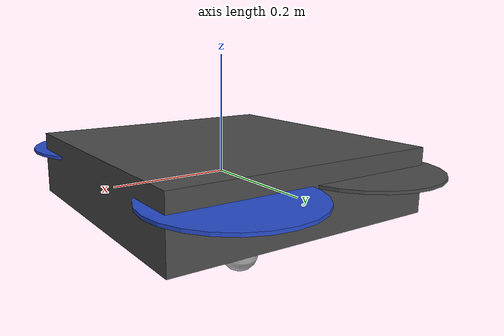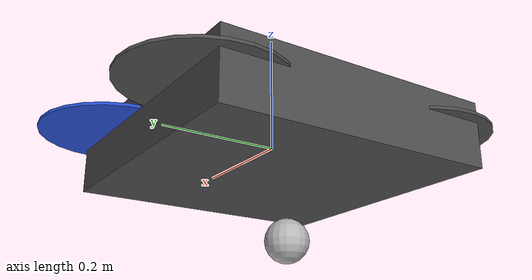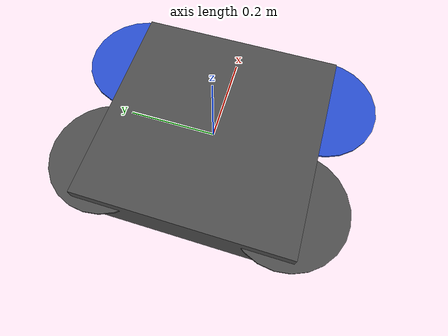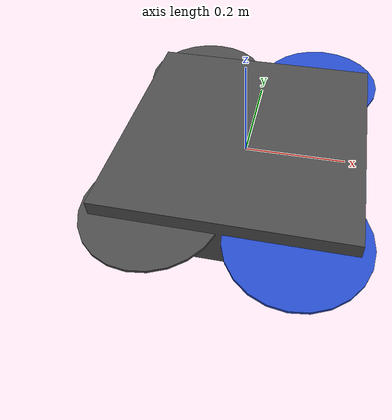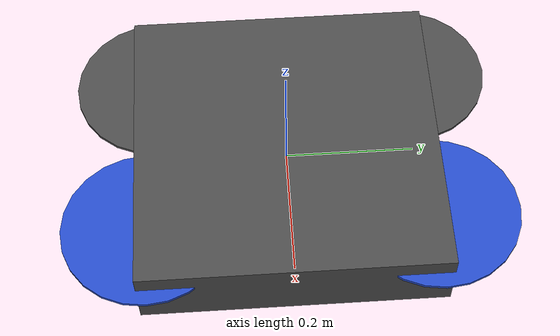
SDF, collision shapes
<sdf version='1.6'>
  <model name='irisfpv'>
    <link name='base_link'>
      <pose frame=''>0.0 0.0 0 0 -0 0.0</pose>   <!-- x,y,z  roll,pitch,yaw -->
      <inertial>
        <pose frame=''>0 0 0 0 -0 0</pose>
        <mass>1.5</mass>
        <inertia>
          <ixx>0.029125</ixx>
          <ixy>0</ixy>
          <ixz>0</ixz>
          <iyy>0.029125</iyy>
          <iyz>0</iyz>
          <izz>0.055225</izz>
        </inertia>
      </inertial>
      <collision name='base_link_inertia_collision'>
        <pose frame=''>0 0 0 0 -0 0.0</pose>
        <geometry>
          <box>
            <size>0.47 0.47 0.11</size>
          </box>
        </geometry>
        <surface>
          <contact>
            <ode>
              <min_depth>0.001</min_depth>
              <max_vel>0</max_vel>
            </ode>
          </contact>
          <friction>
            <ode/>
          </friction>
        </surface>
      </collision>
      <visual name='base_link_inertia_visual'>
        <pose frame=''>0 0 0 0 -0 0.0</pose>
        <geometry>
          <mesh>
            <scale>1 1 1</scale>
            <uri>model://iris_test/meshes/iris.stl</uri>
          </mesh>
        </geometry>
        <material>
          <script>
            <name>Gazebo/DarkGrey</name>
            <uri>file://media/materials/scripts/gazebo.material</uri>
          </script>
        </material>
      </visual>
      <gravity>1</gravity>
      <velocity_decay/>
    </link>
    <link name='/imu_link'>
      <pose frame=''>0 0 0 0 -0 0.0</pose>
      <inertial>
        <pose frame=''>0 0 0 0 -0 0</pose>
        <mass>0.015</mass>
        <inertia>
          <ixx>1e-05</ixx>
          <ixy>0</ixy>
          <ixz>0</ixz>
          <iyy>1e-05</iyy>
          <iyz>0</iyz>
          <izz>1e-05</izz>
        </inertia>
      </inertial>
    </link>
    <joint name='/imu_joint' type='revolute'>
      <child>/imu_link</child>
      <parent>base_link</parent>
      <axis>
        <xyz>1 0 0</xyz>
        <limit>
          <lower>0</lower>
          <upper>0</upper>
          <effort>0</effort>
          <velocity>0</velocity>
        </limit>
        <dynamics>
          <spring_reference>0</spring_reference>
          <spring_stiffness>0</spring_stiffness>
        </dynamics>
        <use_parent_model_frame>1</use_parent_model_frame>
      </axis>
    </joint>
    <link name='rotor_0'>
      <pose frame=''>0.13 -0.22 0.023 0 -0 0</pose>
      <inertial>
        <pose frame=''>0 0 0 0 -0 0</pose>
        <mass>0.005</mass>
        <inertia>
          <ixx>9.75e-07</ixx>
          <ixy>0</ixy>
          <ixz>0</ixz>
          <iyy>0.000273104</iyy>
          <iyz>0</iyz>
          <izz>0.000274004</izz>
        </inertia>
      </inertial>
      <collision name='rotor_0_collision'>
        <pose frame=''>0 0 0 0 -0 0</pose>
        <geometry>
          <cylinder>
            <length>0.005</length>
            <radius>0.128</radius>
          </cylinder>
        </geometry>
        <surface>
          <contact>
            <ode/>
          </contact>
          <friction>
            <ode/>
          </friction>
        </surface>
      </collision>
      <visual name='rotor_0_visual'>
        <pose frame=''>0 0 0 0 -0 0</pose>
        <geometry>
          <mesh>
            <scale>1 1 1</scale>
            <uri>model://iris_test/meshes/iris_prop_ccw.dae</uri>
          </mesh>
        </geometry>
        <material>
          <script>
            <name>Gazebo/Blue</name>
            <uri>file://media/materials/scripts/gazebo.material</uri>
          </script>
        </material>
      </visual>
      <gravity>1</gravity>
      <velocity_decay/>
    </link>
    <joint name='rotor_0_joint' type='revolute'>
      <child>rotor_0</child>
      <parent>base_link</parent>
      <axis>
        <xyz>0 0 1</xyz>
        <limit>
          <lower>-1e+16</lower>
          <upper>1e+16</upper>
        </limit>
        <dynamics>
          <spring_reference>0</spring_reference>
          <spring_stiffness>0</spring_stiffness>
        </dynamics>
        <use_parent_model_frame>1</use_parent_model_frame>
      </axis>
    </joint>
    <link name='rotor_1'>
      <pose frame=''>0.13 0.22 0.023 0 -0 0</pose>
      <inertial>
        <pose frame=''>0 0 0 0 -0 0</pose>
        <mass>0.005</mass>
        <inertia>
          <ixx>9.75e-07</ixx>
          <ixy>0</ixy>
          <ixz>0</ixz>
          <iyy>0.000273104</iyy>
          <iyz>0</iyz>
          <izz>0.000274004</izz>
        </inertia>
      </inertial>
      <collision name='rotor_1_collision'>
        <pose frame=''>0 0 0 0 -0 0</pose>
        <geometry>
          <cylinder>
            <length>0.005</length>
            <radius>0.128</radius>
          </cylinder>
        </geometry>
        <surface>
          <contact>
            <ode/>
          </contact>
          <friction>
            <ode/>
          </friction>
        </surface>
      </collision>
      <visual name='rotor_1_visual'>
        <pose frame=''>0 0 0 0 -0 0</pose>
        <geometry>
          <mesh>
            <scale>1 1 1</scale>
            <uri>model://iris_test/meshes/iris_prop_cw.dae</uri>
          </mesh>
        </geometry>
        <material>
          <script>
            <name>Gazebo/Blue</name>
            <uri>file://media/materials/scripts/gazebo.material</uri>
          </script>
        </material>
      </visual>
      <gravity>1</gravity>
      <velocity_decay/>
    </link>
    <joint name='rotor_1_joint' type='revolute'>
      <child>rotor_1</child>
      <parent>base_link</parent>
      <axis>
        <xyz>0 0 1</xyz>
        <limit>
          <lower>-1e+16</lower>
          <upper>1e+16</upper>
        </limit>
        <dynamics>
          <spring_reference>0</spring_reference>
          <spring_stiffness>0</spring_stiffness>
        </dynamics>
        <use_parent_model_frame>1</use_parent_model_frame>
      </axis>
    </joint>
    <link name='rotor_2'>
      <pose frame=''>-0.13 0.2 0.023 0 -0 0</pose>
      <inertial>
        <pose frame=''>0 0 0 0 -0 0</pose>
        <mass>0.005</mass>
        <inertia>
          <ixx>9.75e-07</ixx>
          <ixy>0</ixy>
          <ixz>0</ixz>
          <iyy>0.000273104</iyy>
          <iyz>0</iyz>
          <izz>0.000274004</izz>
        </inertia>
      </inertial>
      <collision name='rotor_2_collision'>
        <pose frame=''>0 0 0 0 -0 0</pose>
        <geometry>
          <cylinder>
            <length>0.005</length>
            <radius>0.128</radius>
          </cylinder>
        </geometry>
        <surface>
          <contact>
            <ode/>
          </contact>
          <friction>
            <ode/>
          </friction>
        </surface>
      </collision>
      <visual name='rotor_2_visual'>
        <pose frame=''>0 0 0 0 -0 0</pose>
        <geometry>
          <mesh>
            <scale>1 1 1</scale>
            <uri>model://iris_test/meshes/iris_prop_ccw.dae</uri>
          </mesh>
        </geometry>
        <material>
          <script>
            <name>Gazebo/DarkGrey</name>
            <uri>file://media/materials/scripts/gazebo.material</uri>
          </script>
        </material>
      </visual>
      <gravity>1</gravity>
      <velocity_decay/>
    </link>
    <joint name='rotor_2_joint' type='revolute'>
      <child>rotor_2</child>
      <parent>base_link</parent>
      <axis>
        <xyz>0 0 1</xyz>
        <limit>
          <lower>-1e+16</lower>
          <upper>1e+16</upper>
        </limit>
        <dynamics>
          <spring_reference>0</spring_reference>
          <spring_stiffness>0</spring_stiffness>
        </dynamics>
        <use_parent_model_frame>1</use_parent_model_frame>
      </axis>
    </joint>
    <link name='rotor_3'>
      <pose frame=''>-0.13 -0.2 0.023 0 -0 0</pose>
      <inertial>
        <pose frame=''>0 0 0 0 -0 0</pose>
        <mass>0.005</mass>
        <inertia>
          <ixx>9.75e-07</ixx>
          <ixy>0</ixy>
          <ixz>0</ixz>
          <iyy>0.000273104</iyy>
          <iyz>0</iyz>
          <izz>0.000274004</izz>
        </inertia>
      </inertial>
      <collision name='rotor_3_collision'>
        <pose frame=''>0 0 0 0 -0 0</pose>
        <geometry>
          <cylinder>
            <length>0.005</length>
            <radius>0.128</radius>
          </cylinder>
        </geometry>
        <surface>
          <contact>
            <ode/>
          </contact>
          <friction>
            <ode/>
          </friction>
        </surface>
      </collision>
      <visual name='rotor_3_visual'>
        <pose frame=''>0 0 0 0 -0 0</pose>
        <geometry>
          <mesh>
            <scale>1 1 1</scale>
            <uri>model://iris_test/meshes/iris_prop_cw.dae</uri>
          </mesh>
        </geometry>
        <material>
          <script>
            <name>Gazebo/DarkGrey</name>
            <uri>file://media/materials/scripts/gazebo.material</uri>
          </script>
        </material>
      </visual>
      <gravity>1</gravity>
      <velocity_decay/>
    </link>
    <joint name='rotor_3_joint' type='revolute'>
      <child>rotor_3</child>
      <parent>base_link</parent>
      <axis>
        <xyz>0 0 1</xyz>
        <limit>
          <lower>-1e+16</lower>
          <upper>1e+16</upper>
        </limit>
        <dynamics>
          <spring_reference>0</spring_reference>
          <spring_stiffness>0</spring_stiffness>
        </dynamics>
        <use_parent_model_frame>1</use_parent_model_frame>
      </axis>
    </joint>

    <link name="cgo3_camera_link">
      <inertial>
        <!-- place holder -->
        <pose>-0.041 0 -0.162 0 0 0</pose>
        <mass>0.1</mass>
        <inertia>
          <ixx>0.001</ixx>
          <ixy>0</ixy>
          <ixz>0</ixz>
          <iyy>0.001</iyy>
          <iyz>0</iyz>
          <izz>0.001</izz>
        </inertia>
      </inertial>
      <collision name='cgo3_camera_collision'>
        <pose>-0.041 0 -0.162 0 0 0</pose>
        <geometry>
          <sphere>
            <radius>0.035</radius>
          </sphere>
        </geometry>
        <surface>
          <friction>
            <ode>
              <mu>1</mu>
              <mu2>1</mu2>
            </ode>
          </friction>
          <contact>
            <ode>
              <kp>1e+8</kp>
              <kd>1</kd>
              <max_vel>0.01</max_vel>
              <min_depth>0.001</min_depth>
            </ode>
          </contact>
        </surface>
      </collision>

      <sensor name="camera_imu" type="imu">
        <always_on>1</always_on>
      </sensor>
      <sensor name="camera" type="camera">
        <pose>0.10 0 -0.162 0 0 0</pose>
        <camera>
          <horizontal_fov>2.0</horizontal_fov>
          <image>
            <format>R8G8B8</format>
            <width>640</width>
            <height>360</height>
          </image>
          <clip>
            <near>0.05</near>
            <far>15000</far>
          </clip>
        </camera>
        <always_on>1</always_on>
        <update_rate>10</update_rate>
        <visualize>true</visualize>
        <plugin name="GstCameraPlugin" filename="libgazebo_gst_camera_plugin.so">
            <robotNamespace></robotNamespace>
            <udpHost>127.0.0.1</udpHost>
            <udpPort>5600</udpPort>
        </plugin>
        <plugin name="GeotaggedImagesPlugin" filename="libgazebo_geotagged_images_plugin.so">
            <robotNamespace>typhoon_h480</robotNamespace>
            <interval>1</interval>
            <width>3840</width>
            <height>2160</height>
            <maximum_zoom>8.0</maximum_zoom>
        </plugin>
      </sensor>
    </link>
    <joint name='cgo3_camera_joint' type='revolute'>
      <child>cgo3_camera_link</child>
      <parent>cgo3_horizontal_arm_link</parent>
      <pose>-0.01 0.03 -0.162 0 0 0</pose>
      <axis>
        <xyz>0 -1 0</xyz>
        <limit>
          <lower>-1.05</lower>
          <upper>2.09</upper>
          <effort>100</effort>
          <velocity>-1</velocity>
        </limit>
        <dynamics>
          <damping>0.1</damping>
        </dynamics>
        <use_parent_model_frame>1</use_parent_model_frame>
      </axis>
      <physics>
        <ode>
          <implicit_spring_damper>1</implicit_spring_damper>
          <limit>
            <!-- testing soft limits -->
            <cfm>0.1</cfm>
            <erp>0.2</erp>
          </limit>
        </ode>
      </physics>
    </joint>

    <plugin name='front_right_motor_model' filename='librotor_plugin.so'>
      <robotNamespace/>
      <jointName>rotor_0_joint</jointName>
      <linkName>rotor_0</linkName>
      <motorNumber>0</motorNumber>
      <turningDirection>ccw</turningDirection>
      <rotorDragCoefficient>0.000175</rotorDragCoefficient>
      <rollingMomentCoefficient>1e-06</rollingMomentCoefficient>
      <maxRotVelocity>1100</maxRotVelocity>
      <motorConstant>8.54858e-06</motorConstant>
      <momentConstant>0.06</momentConstant>
      <timeConstantUp>0.0125</timeConstantUp>
      <timeConstantDown>0.025</timeConstantDown>
      <motorSpeedPubTopic>/motor_speed/0</motorSpeedPubTopic>
      <rotorVelocitySlowdownSim>10</rotorVelocitySlowdownSim>
    </plugin>
    <plugin name='front_left_motor_model' filename='librotor_plugin.so'>
      <robotNamespace/>
      <jointName>rotor_1_joint</jointName>
      <linkName>rotor_1</linkName>
      <motorNumber>1</motorNumber>
      <turningDirection>cw</turningDirection>
      <rotorDragCoefficient>0.000175</rotorDragCoefficient>
      <rollingMomentCoefficient>1e-06</rollingMomentCoefficient>
      <maxRotVelocity>1100</maxRotVelocity>                           <!-- units: rad/s -->
      <motorConstant>8.54858e-06</motorConstant>
      <momentConstant>0.06</momentConstant>
      <timeConstantUp>0.0125</timeConstantUp>
      <timeConstantDown>0.025</timeConstantDown>                      <!-- I don't think this is actually used -->
      <motorSpeedPubTopic>/motor_speed/1</motorSpeedPubTopic>
      <rotorVelocitySlowdownSim>10</rotorVelocitySlowdownSim>
    </plugin>
    <plugin name='back_left_motor_model' filename='librotor_plugin.so'>
      <robotNamespace/>
      <jointName>rotor_2_joint</jointName>
      <linkName>rotor_2</linkName>
      <motorNumber>2</motorNumber>
      <turningDirection>ccw</turningDirection>
      <rotorDragCoefficient>0.000175</rotorDragCoefficient>
      <rollingMomentCoefficient>1e-06</rollingMomentCoefficient>
      <maxRotVelocity>1100</maxRotVelocity>                           <!-- units: rad/s -->
      <motorConstant>8.54858e-06</motorConstant>
      <momentConstant>0.06</momentConstant>
      <timeConstantUp>0.0125</timeConstantUp>
      <timeConstantDown>0.025</timeConstantDown>                      <!-- I don't think this is actually used -->
      <motorSpeedPubTopic>/motor_speed/2</motorSpeedPubTopic>
      <rotorVelocitySlowdownSim>10</rotorVelocitySlowdownSim>
    </plugin>
    <plugin name='back_right_motor_model' filename='librotor_plugin.so'>
      <robotNamespace/>
      <jointName>rotor_3_joint</jointName>
      <linkName>rotor_3</linkName>
      <motorNumber>3</motorNumber>
      <turningDirection>cw</turningDirection>
      <rotorDragCoefficient>0.000175</rotorDragCoefficient>
      <rollingMomentCoefficient>1e-06</rollingMomentCoefficient>
      <maxRotVelocity>1100</maxRotVelocity>                           <!-- units: rad/s -->
      <motorConstant>8.54858e-06</motorConstant>
      <momentConstant>0.06</momentConstant>
      <timeConstantUp>0.0125</timeConstantUp>
      <timeConstantDown>0.025</timeConstantDown>                      <!-- I don't think this is actually used -->
      <motorSpeedPubTopic>/motor_speed/3</motorSpeedPubTopic>
      <rotorVelocitySlowdownSim>10</rotorVelocitySlowdownSim>
    </plugin>

  </model>
</sdf>
